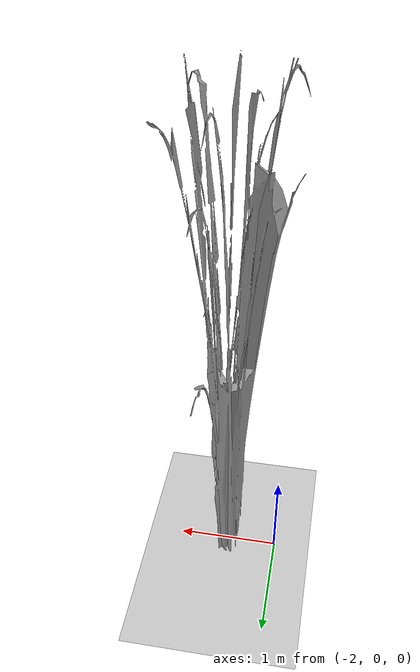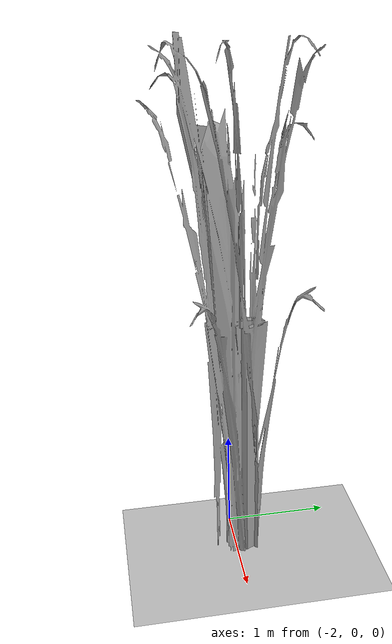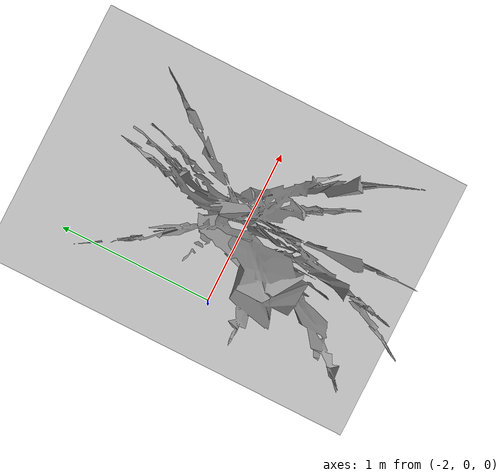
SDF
<?xml version="1.0"?>
<sdf version="1.5">
  <world name="default">

    <gravity>0 0 0</gravity>

    <!-- A global light source -->
    <include>
      <uri>model://sun</uri>
    </include>

    <!-- A ground plane -->
    <include>
      <uri>model://ground_plane</uri>
    </include>

    <!--land-->
    <include>
      <uri>model://ground</uri>
      <static>false</static>
      <pose>0 0 0 0 0 0</pose>
    </include>

    <!--nappier grass-->
    <include>
      <uri>model://plant</uri>
      <static>false</static>
      <pose>-2 0 0.05 0 0 0</pose>
    </include>
  </world>
</sdf>

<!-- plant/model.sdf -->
<sdf version="1.5">
  <model name="plant">
    <static>false</static>
    <link name="link">
      <collision name="collision">
        <geometry>
          <mesh>
            <uri>model://plant/meshes/plant.stl</uri>
            <scale>0.01 0.01 0.01</scale>
          </mesh>
        </geometry>
        <surface>
          <friction>
            <ode>
              <mu>100</mu>
              <mu2>50</mu2>
            </ode>
          </friction>
        </surface>
      </collision>
      <visual name="visual">
        <cast_shadows>false</cast_shadows>
        <geometry>
          <mesh>
            <uri>model://plant/meshes/plant.stl</uri>
            <scale>0.01 0.01 0.01</scale>
          </mesh>
        </geometry>
        <material>
          <script>
            <uri>file://media/materials/scripts/gazebo.material</uri>
            <name>Gazebo/Grey</name>
          </script>
        </material>
      </visual>
    </link>
  </model>
</sdf>
